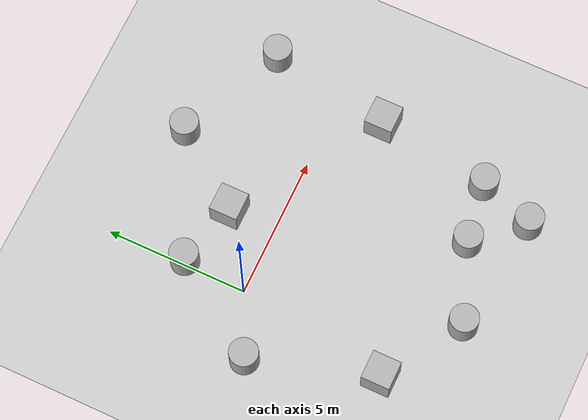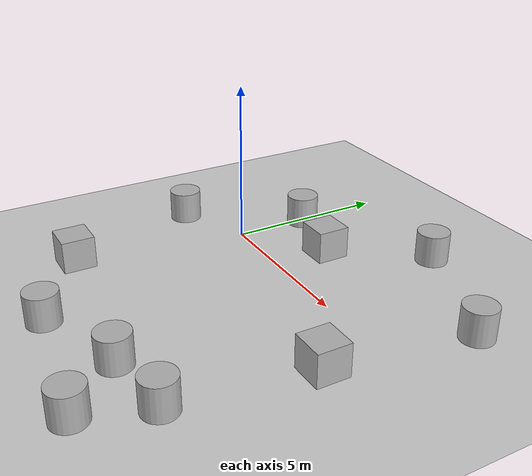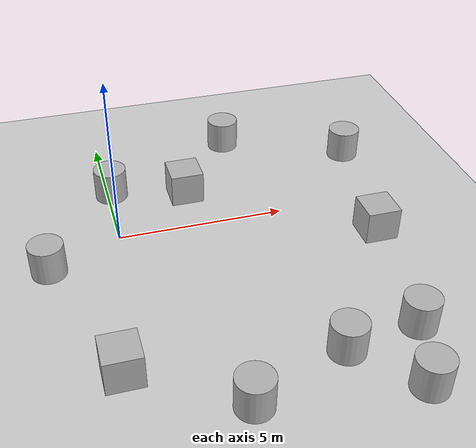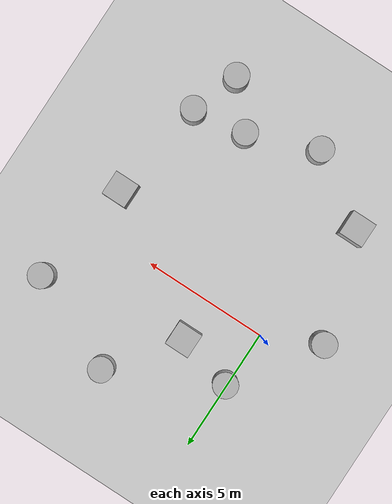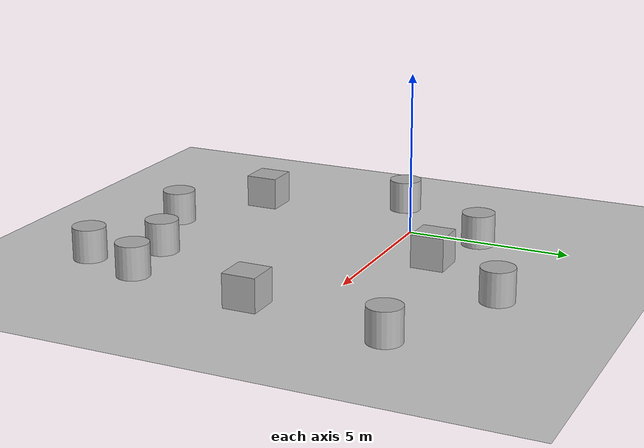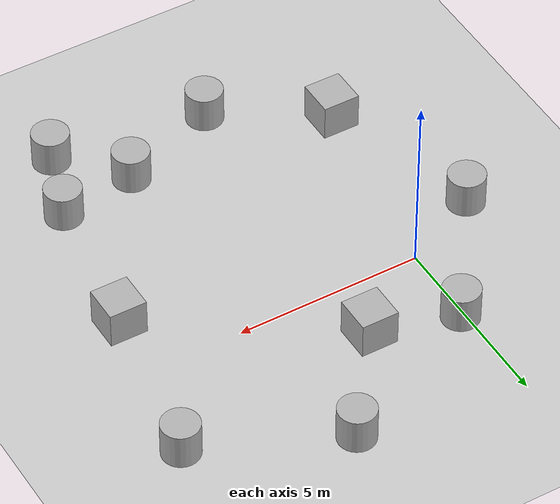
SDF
<sdf version='1.10'>
  <world name='empty'>
    <physics name='1ms' type='ignored'>
      <max_step_size>0.001</max_step_size>
      <real_time_factor>1</real_time_factor>
      <real_time_update_rate>1000</real_time_update_rate>
    </physics>
    <plugin name='gz::sim::systems::Physics' filename='gz-sim-physics-system'/>
    <plugin name='gz::sim::systems::UserCommands' filename='gz-sim-user-commands-system'/>
    <plugin name='gz::sim::systems::SceneBroadcaster' filename='gz-sim-scene-broadcaster-system'/>
    <plugin name='gz::sim::systems::Contact' filename='gz-sim-contact-system'/>
    <gravity>0 0 -9.8000000000000007</gravity>
    <magnetic_field>5.5644999999999998e-06 2.2875799999999999e-05 -4.2388400000000002e-05</magnetic_field>
    <atmosphere type='adiabatic'/>
    <scene>
      <ambient>0.400000006 0.400000006 0.400000006 1</ambient>
      <background>0.699999988 0.699999988 0.699999988 1</background>
      <shadows>true</shadows>
    </scene>
    <model name='ground_plane'>
      <static>true</static>
      <link name='link'>
        <collision name='collision'>
          <geometry>
            <plane>
              <normal>0 0 1</normal>
              <size>100 100</size>
            </plane>
          </geometry>
          <surface>
            <friction>
              <ode/>
            </friction>
            <bounce/>
            <contact/>
          </surface>
        </collision>
        <visual name='visual'>
          <geometry>
            <plane>
              <normal>0 0 1</normal>
              <size>100 100</size>
            </plane>
          </geometry>
          <material>
            <ambient>0.800000012 0.800000012 0.800000012 1</ambient>
            <diffuse>0.800000012 0.800000012 0.800000012 1</diffuse>
            <specular>0.800000012 0.800000012 0.800000012 1</specular>
          </material>
        </visual>
        <pose>0 0 0 0 0 0</pose>
        <inertial>
          <pose>0 0 0 0 0 0</pose>
          <mass>1</mass>
          <inertia>
            <ixx>1</ixx>
            <ixy>0</ixy>
            <ixz>0</ixz>
            <iyy>1</iyy>
            <iyz>0</iyz>
            <izz>1</izz>
          </inertia>
        </inertial>
        <enable_wind>false</enable_wind>
      </link>
      <pose>0 0 0 0 0 0</pose>
      <self_collide>false</self_collide>
    </model>
    <model name='cylinder'>
      <pose>-2.1350548267364502 -1.0425699949264526 0.5 0 0 0</pose>
      <link name='cylinder_link'>
        <inertial>
          <inertia>
            <ixx>0.14580000000000001</ixx>
            <ixy>0</ixy>
            <ixz>0</ixz>
            <iyy>0.14580000000000001</iyy>
            <iyz>0</iyz>
            <izz>0.125</izz>
          </inertia>
          <mass>1</mass>
          <pose>0 0 0 0 0 0</pose>
        </inertial>
        <collision name='cylinder_collision'>
          <geometry>
            <cylinder>
              <radius>0.5</radius>
              <length>1</length>
            </cylinder>
          </geometry>
          <surface>
            <friction>
              <ode/>
            </friction>
            <bounce/>
            <contact/>
          </surface>
        </collision>
        <visual name='cylinder_visual'>
          <geometry>
            <cylinder>
              <radius>0.5</radius>
              <length>1</length>
            </cylinder>
          </geometry>
          <material>
            <ambient>0.300000012 0.300000012 0.300000012 1</ambient>
            <diffuse>0.699999988 0.699999988 0.699999988 1</diffuse>
            <specular>1 1 1 1</specular>
          </material>
        </visual>
        <pose>0 0 0 0 0 0</pose>
        <enable_wind>false</enable_wind>
      </link>
      <static>false</static>
      <self_collide>false</self_collide>
    </model>
    <model name='cylinder_0'>
      <pose>4.3384641353900619 4.2984740675311608 0.5 0 0 0</pose>
      <link name='cylinder_link'>
        <inertial>
          <inertia>
            <ixx>0.14580000000000001</ixx>
            <ixy>0</ixy>
            <ixz>0</ixz>
            <iyy>0.14580000000000001</iyy>
            <iyz>0</iyz>
            <izz>0.125</izz>
          </inertia>
          <mass>1</mass>
          <pose>0 0 0 0 0 0</pose>
        </inertial>
        <collision name='cylinder_collision'>
          <geometry>
            <cylinder>
              <radius>0.5</radius>
              <length>1</length>
            </cylinder>
          </geometry>
          <surface>
            <friction>
              <ode/>
            </friction>
            <bounce/>
            <contact/>
          </surface>
        </collision>
        <visual name='cylinder_visual'>
          <geometry>
            <cylinder>
              <radius>0.5</radius>
              <length>1</length>
            </cylinder>
          </geometry>
          <material>
            <ambient>0.300000012 0.300000012 0.300000012 1</ambient>
            <diffuse>0.699999988 0.699999988 0.699999988 1</diffuse>
            <specular>1 1 1 1</specular>
          </material>
        </visual>
        <pose>0 0 0 0 0 0</pose>
        <enable_wind>false</enable_wind>
      </link>
      <static>false</static>
      <self_collide>false</self_collide>
    </model>
    <model name='cylinder_1'>
      <pose>4.6747121861283958 -6.0480011942649563 0.5 0 0 0</pose>
      <link name='cylinder_link'>
        <inertial>
          <inertia>
            <ixx>0.14580000000000001</ixx>
            <ixy>0</ixy>
            <ixz>0</ixz>
            <iyy>0.14580000000000001</iyy>
            <iyz>0</iyz>
            <izz>0.125</izz>
          </inertia>
          <mass>1</mass>
          <pose>0 0 0 0 0 0</pose>
        </inertial>
        <collision name='cylinder_collision'>
          <geometry>
            <cylinder>
              <radius>0.5</radius>
              <length>1</length>
            </cylinder>
          </geometry>
          <surface>
            <friction>
              <ode/>
            </friction>
            <bounce/>
            <contact/>
          </surface>
        </collision>
        <visual name='cylinder_visual'>
          <geometry>
            <cylinder>
              <radius>0.5</radius>
              <length>1</length>
            </cylinder>
          </geometry>
          <material>
            <ambient>0.300000012 0.300000012 0.300000012 1</ambient>
            <diffuse>0.699999988 0.699999988 0.699999988 1</diffuse>
            <specular>1 1 1 1</specular>
          </material>
        </visual>
        <pose>0 0 0 0 0 0</pose>
        <enable_wind>false</enable_wind>
      </link>
      <static>false</static>
      <self_collide>false</self_collide>
    </model>
    <model name='cylinder_2'>
      <pose>6.1093227003299795 -7.6441401677561389 0.5 0 0 0</pose>
      <link name='cylinder_link'>
        <inertial>
          <inertia>
            <ixx>0.14580000000000001</ixx>
            <ixy>0</ixy>
            <ixz>0</ixz>
            <iyy>0.14580000000000001</iyy>
            <iyz>0</iyz>
            <izz>0.125</izz>
          </inertia>
          <mass>1</mass>
          <pose>0 0 0 0 0 0</pose>
        </inertial>
        <collision name='cylinder_collision'>
          <geometry>
            <cylinder>
              <radius>0.5</radius>
              <length>1</length>
            </cylinder>
          </geometry>
          <surface>
            <friction>
              <ode/>
            </friction>
            <bounce/>
            <contact/>
          </surface>
        </collision>
        <visual name='cylinder_visual'>
          <geometry>
            <cylinder>
              <radius>0.5</radius>
              <length>1</length>
            </cylinder>
          </geometry>
          <material>
            <ambient>0.300000012 0.300000012 0.300000012 1</ambient>
            <diffuse>0.699999988 0.699999988 0.699999988 1</diffuse>
            <specular>1 1 1 1</specular>
          </material>
        </visual>
        <pose>0 0 0 0 0 0</pose>
        <enable_wind>false</enable_wind>
      </link>
      <static>false</static>
      <self_collide>false</self_collide>
    </model>
    <model name='cylinder_3'>
      <pose>6.7808212605496916 -5.7298810777918172 0.5 0 0 0</pose>
      <link name='cylinder_link'>
        <inertial>
          <inertia>
            <ixx>0.14580000000000001</ixx>
            <ixy>0</ixy>
            <ixz>0</ixz>
            <iyy>0.14580000000000001</iyy>
            <iyz>0</iyz>
            <izz>0.125</izz>
          </inertia>
          <mass>1</mass>
          <pose>0 0 0 0 0 0</pose>
        </inertial>
        <collision name='cylinder_collision'>
          <geometry>
            <cylinder>
              <radius>0.5</radius>
              <length>1</length>
            </cylinder>
          </geometry>
          <surface>
            <friction>
              <ode/>
            </friction>
            <bounce/>
            <contact/>
          </surface>
        </collision>
        <visual name='cylinder_visual'>
          <geometry>
            <cylinder>
              <radius>0.5</radius>
              <length>1</length>
            </cylinder>
          </geometry>
          <material>
            <ambient>0.300000012 0.300000012 0.300000012 1</ambient>
            <diffuse>0.699999988 0.699999988 0.699999988 1</diffuse>
            <specular>1 1 1 1</specular>
          </material>
        </visual>
        <pose>0 0 0 0 0 0</pose>
        <enable_wind>false</enable_wind>
      </link>
      <static>false</static>
      <self_collide>false</self_collide>
    </model>
    <model name='cylinder_4'>
      <pose>1.9590404307552722 -7.0799377500920562 0.5 0 0 0</pose>
      <link name='cylinder_link'>
        <inertial>
          <inertia>
            <ixx>0.14580000000000001</ixx>
            <ixy>0</ixy>
            <ixz>0</ixz>
            <iyy>0.14580000000000001</iyy>
            <iyz>0</iyz>
            <izz>0.125</izz>
          </inertia>
          <mass>1</mass>
          <pose>0 0 0 0 0 0</pose>
        </inertial>
        <collision name='cylinder_collision'>
          <geometry>
            <cylinder>
              <radius>0.5</radius>
              <length>1</length>
            </cylinder>
          </geometry>
          <surface>
            <friction>
              <ode/>
            </friction>
            <bounce/>
            <contact/>
          </surface>
        </collision>
        <visual name='cylinder_visual'>
          <geometry>
            <cylinder>
              <radius>0.5</radius>
              <length>1</length>
            </cylinder>
          </geometry>
          <material>
            <ambient>0.300000012 0.300000012 0.300000012 1</ambient>
            <diffuse>0.699999988 0.699999988 0.699999988 1</diffuse>
            <specular>1 1 1 1</specular>
          </material>
        </visual>
        <pose>0 0 0 0 0 0</pose>
        <enable_wind>false</enable_wind>
      </link>
      <static>false</static>
      <self_collide>false</self_collide>
    </model>
    <model name='cylinder_5'>
      <pose>0.12179929840846526 2.2431034484303405 0.5 0 0 0</pose>
      <link name='cylinder_link'>
        <inertial>
          <inertia>
            <ixx>0.14580000000000001</ixx>
            <ixy>0</ixy>
            <ixz>0</ixz>
            <iyy>0.14580000000000001</iyy>
            <iyz>0</iyz>
            <izz>0.125</izz>
          </inertia>
          <mass>1</mass>
          <pose>0 0 0 0 0 0</pose>
        </inertial>
        <collision name='cylinder_collision'>
          <geometry>
            <cylinder>
              <radius>0.5</radius>
              <length>1</length>
            </cylinder>
          </geometry>
          <surface>
            <friction>
              <ode/>
            </friction>
            <bounce/>
            <contact/>
          </surface>
        </collision>
        <visual name='cylinder_visual'>
          <geometry>
            <cylinder>
              <radius>0.5</radius>
              <length>1</length>
            </cylinder>
          </geometry>
          <material>
            <ambient>0.300000012 0.300000012 0.300000012 1</ambient>
            <diffuse>0.699999988 0.699999988 0.699999988 1</diffuse>
            <specular>1 1 1 1</specular>
          </material>
        </visual>
        <pose>0 0 0 0 0 0</pose>
        <enable_wind>false</enable_wind>
      </link>
      <static>false</static>
      <self_collide>false</self_collide>
    </model>
    <model name='cylinder_6'>
      <pose>8.1368429731228691 2.6005837933612694 0.5 0 0 0</pose>
      <link name='cylinder_link'>
        <inertial>
          <inertia>
            <ixx>0.14580000000000001</ixx>
            <ixy>0</ixy>
            <ixz>0</ixz>
            <iyy>0.14580000000000001</iyy>
            <iyz>0</iyz>
            <izz>0.125</izz>
          </inertia>
          <mass>1</mass>
          <pose>0 0 0 0 0 0</pose>
        </inertial>
        <collision name='cylinder_collision'>
          <geometry>
            <cylinder>
              <radius>0.5</radius>
              <length>1</length>
            </cylinder>
          </geometry>
          <surface>
            <friction>
              <ode/>
            </friction>
            <bounce/>
            <contact/>
          </surface>
        </collision>
        <visual name='cylinder_visual'>
          <geometry>
            <cylinder>
              <radius>0.5</radius>
              <length>1</length>
            </cylinder>
          </geometry>
          <material>
            <ambient>0.300000012 0.300000012 0.300000012 1</ambient>
            <diffuse>0.699999988 0.699999988 0.699999988 1</diffuse>
            <specular>1 1 1 1</specular>
          </material>
        </visual>
        <pose>0 0 0 0 0 0</pose>
        <enable_wind>false</enable_wind>
      </link>
      <static>false</static>
      <self_collide>false</self_collide>
    </model>
    <model name='box'>
      <pose>7.4069049308728339 -1.7216165932544096 0.5 0 0 0</pose>
      <link name='box_link'>
        <inertial>
          <inertia>
            <ixx>0.16666</ixx>
            <ixy>0</ixy>
            <ixz>0</ixz>
            <iyy>0.16666</iyy>
            <iyz>0</iyz>
            <izz>0.16666</izz>
          </inertia>
          <mass>1</mass>
          <pose>0 0 0 0 0 0</pose>
        </inertial>
        <collision name='box_collision'>
          <geometry>
            <box>
              <size>1 1 1</size>
            </box>
          </geometry>
          <surface>
            <friction>
              <ode/>
            </friction>
            <bounce/>
            <contact/>
          </surface>
        </collision>
        <visual name='box_visual'>
          <geometry>
            <box>
              <size>1 1 1</size>
            </box>
          </geometry>
          <material>
            <ambient>0.300000012 0.300000012 0.300000012 1</ambient>
            <diffuse>0.699999988 0.699999988 0.699999988 1</diffuse>
            <specular>1 1 1 1</specular>
          </material>
        </visual>
        <pose>0 0 0 0 0 0</pose>
        <enable_wind>false</enable_wind>
      </link>
      <static>false</static>
      <self_collide>false</self_collide>
    </model>
    <model name='box_0'>
      <pose>2.3705302347308832 1.6612260683563074 0.5 0 0 0</pose>
      <link name='box_link'>
        <inertial>
          <inertia>
            <ixx>0.16666</ixx>
            <ixy>0</ixy>
            <ixz>0</ixz>
            <iyy>0.16666</iyy>
            <iyz>0</iyz>
            <izz>0.16666</izz>
          </inertia>
          <mass>1</mass>
          <pose>0 0 0 0 0 0</pose>
        </inertial>
        <collision name='box_collision'>
          <geometry>
            <box>
              <size>1 1 1</size>
            </box>
          </geometry>
          <surface>
            <friction>
              <ode/>
            </friction>
            <bounce/>
            <contact/>
          </surface>
        </collision>
        <visual name='box_visual'>
          <geometry>
            <box>
              <size>1 1 1</size>
            </box>
          </geometry>
          <material>
            <ambient>0.300000012 0.300000012 0.300000012 1</ambient>
            <diffuse>0.699999988 0.699999988 0.699999988 1</diffuse>
            <specular>1 1 1 1</specular>
          </material>
        </visual>
        <pose>0 0 0 0 0 0</pose>
        <enable_wind>false</enable_wind>
      </link>
      <static>false</static>
      <self_collide>false</self_collide>
    </model>
    <model name='box_1'>
      <pose>-0.79563519586081188 -5.3396172961488144 0.5 0 0 0</pose>
      <link name='box_link'>
        <inertial>
          <inertia>
            <ixx>0.16666</ixx>
            <ixy>0</ixy>
            <ixz>0</ixz>
            <iyy>0.16666</iyy>
            <iyz>0</iyz>
            <izz>0.16666</izz>
          </inertia>
          <mass>1</mass>
          <pose>0 0 0 0 0 0</pose>
        </inertial>
        <collision name='box_collision'>
          <geometry>
            <box>
              <size>1 1 1</size>
            </box>
          </geometry>
          <surface>
            <friction>
              <ode/>
            </friction>
            <bounce/>
            <contact/>
          </surface>
        </collision>
        <visual name='box_visual'>
          <geometry>
            <box>
              <size>1 1 1</size>
            </box>
          </geometry>
          <material>
            <ambient>0.300000012 0.300000012 0.300000012 1</ambient>
            <diffuse>0.699999988 0.699999988 0.699999988 1</diffuse>
            <specular>1 1 1 1</specular>
          </material>
        </visual>
        <pose>0 0 0 0 0 0</pose>
        <enable_wind>false</enable_wind>
      </link>
      <static>false</static>
      <self_collide>false</self_collide>
    </model>
    <light name='sun' type='directional'>
      <pose>0 0 10 0 0 0</pose>
      <cast_shadows>true</cast_shadows>
      <intensity>1</intensity>
      <direction>-0.5 0.10000000000000001 -0.90000000000000002</direction>
      <diffuse>0.800000012 0.800000012 0.800000012 1</diffuse>
      <specular>0.200000003 0.200000003 0.200000003 1</specular>
      <attenuation>
        <range>1000</range>
        <linear>0.01</linear>
        <constant>0.90000000000000002</constant>
        <quadratic>0.001</quadratic>
      </attenuation>
      <spot>
        <inner_angle>0</inner_angle>
        <outer_angle>0</outer_angle>
        <falloff>0</falloff>
      </spot>
    </light>
  </world>
</sdf>
